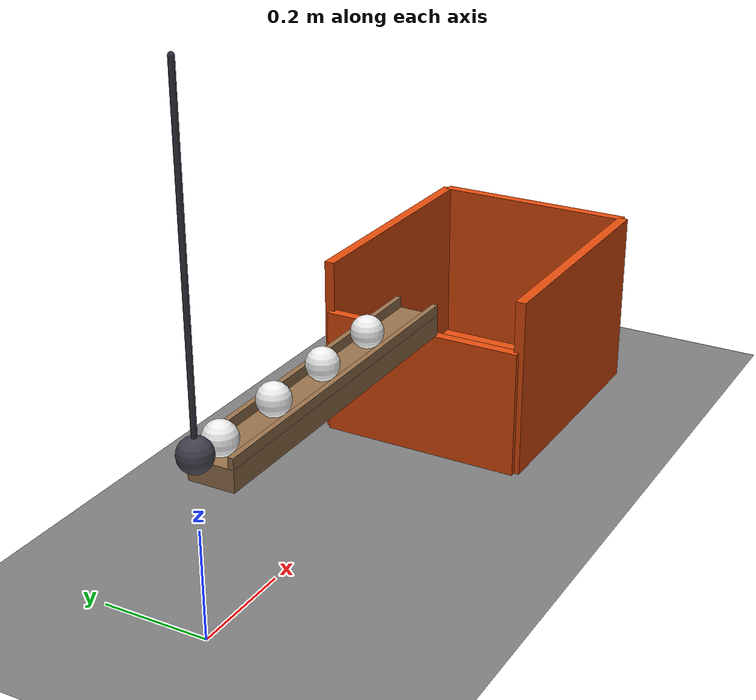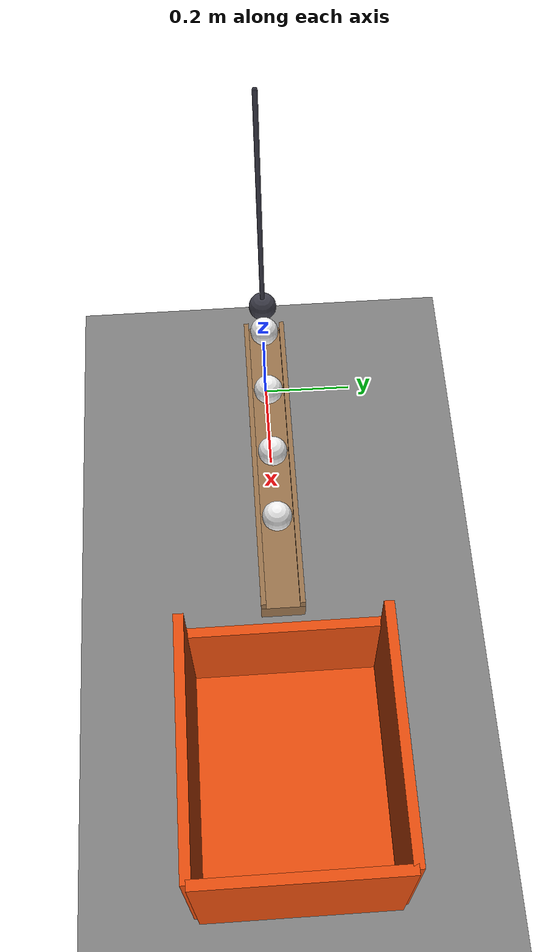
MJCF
<mujoco model="pendulum_strikes_a_row_of_balls_into_a_box">
  <compiler angle="radian"/>
  <option timestep="0.002"/>
  <worldbody>
    <geom name="floor" type="plane" size="8 8 0.1" friction="0.8 0.005 0.002"/>
    <body name="rail">
      <geom name="rail" type="box" pos="0.3675 0 0.28" size="0.3325 0.043 0.02" friction="0.05 0.005 0.005" rgba="0.6 0.45 0.3 1"/>
    </body>
    <body name="rail left lip">
      <geom name="rail left lip" type="box" pos="0.3675 0.038 0.31" size="0.3325 0.005 0.01" friction="0.05 0.005 0.005" rgba="0.6 0.45 0.3 1"/>
    </body>
    <body name="rail right lip">
      <geom name="rail right lip" type="box" pos="0.3675 -0.038 0.31" size="0.3325 0.005 0.01" friction="0.05 0.005 0.005" rgba="0.6 0.45 0.3 1"/>
    </body>
    <body name="pendulum" pos="0 0 0.932">
      <joint name="pendulum_hinge" type="hinge" pos="0 0 0" axis="0 1 0"/>
      <geom name="pendulum" type="sphere" pos="0 0 -0.6" size="0.03" mass="0.1" friction="0.01 0 0" solref="0.01 0.2" rgba="0.25 0.25 0.3 1"/>
      <geom name="pendulum rod" type="capsule" size="0.005" fromto="0 0 0 0 0 -0.57" mass="0.005" contype="0" conaffinity="0" rgba="0.2 0.2 0.25 1"/>
    </body>
    <body name="ball1" pos="0.065 0 0.33">
      <freejoint/>
      <geom name="ball1" type="sphere" pos="0 0 0" size="0.03" mass="0.1" condim="6" friction="0.05 0.005 0.005" solref="0.01 0.2" rgba="0.95 0.95 0.95 1"/>
    </body>
    <body name="ball2" pos="0.215 0 0.33">
      <freejoint/>
      <geom name="ball2" type="sphere" pos="0 0 0" size="0.03" mass="0.1" condim="6" friction="0.05 0.005 0.005" solref="0.01 0.2" rgba="0.95 0.95 0.95 1"/>
    </body>
    <body name="ball3" pos="0.365 0 0.33">
      <freejoint/>
      <geom name="ball3" type="sphere" pos="0 0 0" size="0.03" mass="0.1" condim="6" friction="0.05 0.005 0.005" solref="0.01 0.2" rgba="0.95 0.95 0.95 1"/>
    </body>
    <body name="ball4" pos="0.515 0 0.33">
      <freejoint/>
      <geom name="ball4" type="sphere" pos="0 0 0" size="0.03" mass="0.1" condim="6" friction="0.05 0.005 0.005" solref="0.01 0.2" rgba="0.95 0.95 0.95 1"/>
    </body>
    <body name="box">
      <geom name="box_base" type="box" pos="0.97 0 0.01" size="0.25 0.2 0.01" friction="1 0.02 0.02" solref="0.01 1" rgba="0.9 0.3 0.05 1"/>
      <geom name="box_near_wall" type="box" pos="0.72 0 0.125" size="0.01 0.2 0.125" friction="1 0.02 0.02" solref="0.01 1" rgba="0.9 0.3 0.05 1"/>
      <geom name="box_far_wall" type="box" pos="1.22 0 0.175" size="0.01 0.2 0.175" friction="1 0.02 0.02" solref="0.01 1" rgba="0.9 0.3 0.05 1"/>
      <geom name="box_left_wall" type="box" pos="0.97 0.2 0.175" size="0.25 0.01 0.175" friction="1 0.02 0.02" solref="0.01 1" rgba="0.9 0.3 0.05 1"/>
      <geom name="box_right_wall" type="box" pos="0.97 -0.2 0.175" size="0.25 0.01 0.175" friction="1 0.02 0.02" solref="0.01 1" rgba="0.9 0.3 0.05 1"/>
    </body>
  </worldbody>
  <keyframe>
    <key name="start" qpos="1.40324 0.065 0 0.33 1 0 0 0 0.215 0 0.33 1 0 0 0 0.365 0 0.33 1 0 0 0 0.515 0 0.33 1 0 0 0" qvel="0 0 0 0 0 0 0 0 0 0 0 0 0 0 0 0 0 0 0 0 0 0 0 0 0"/>
  </keyframe>
</mujoco>
